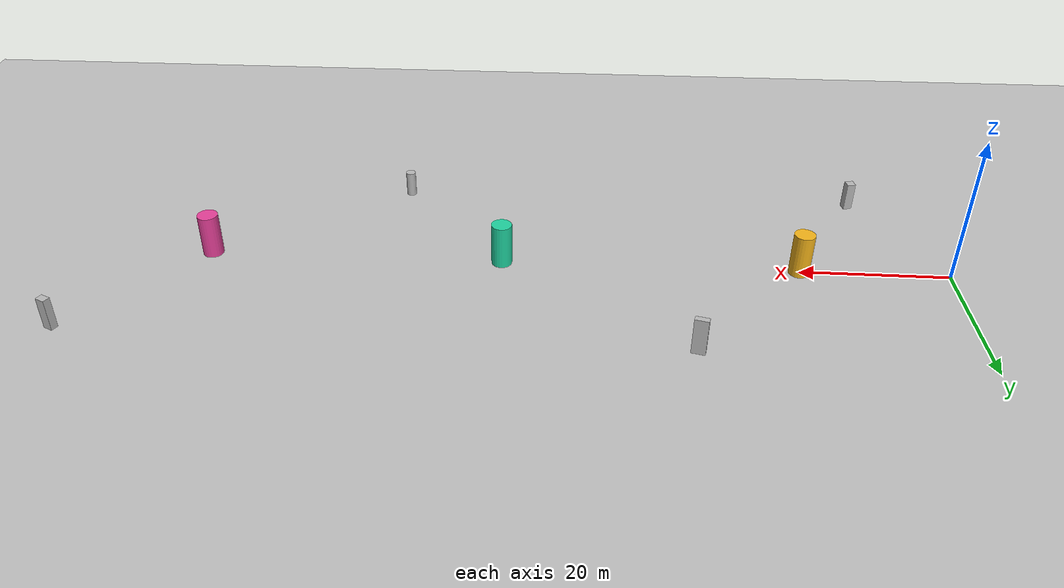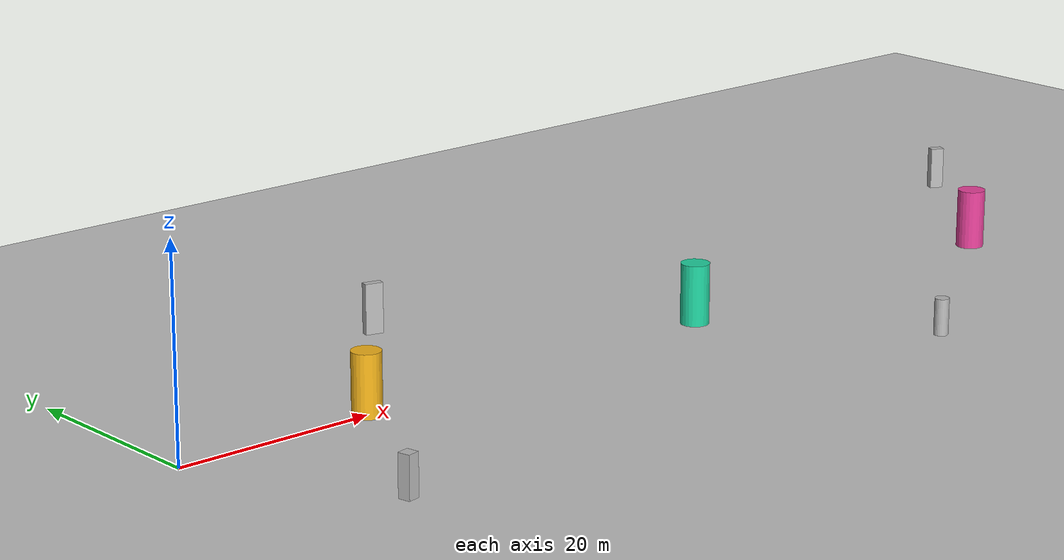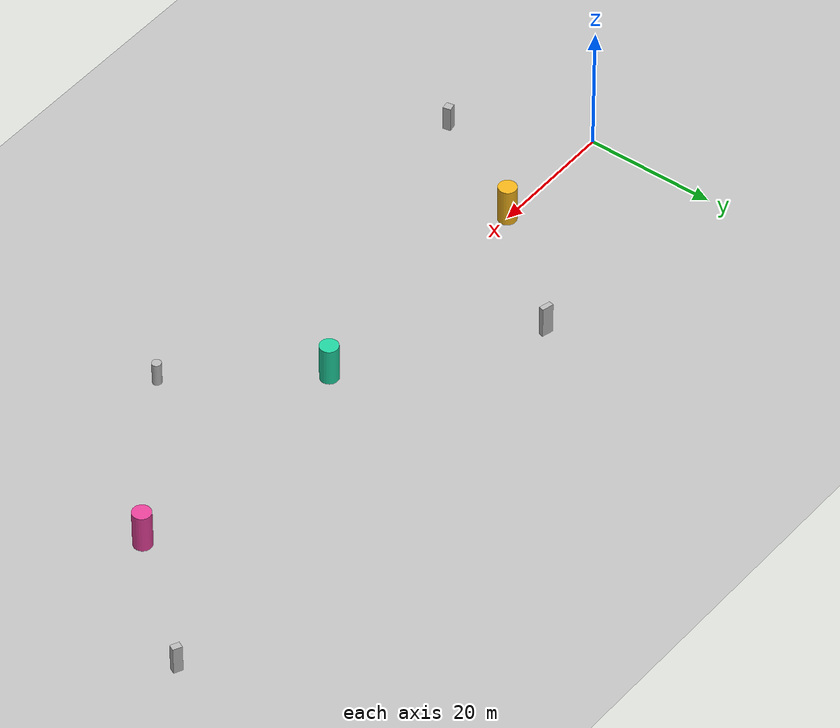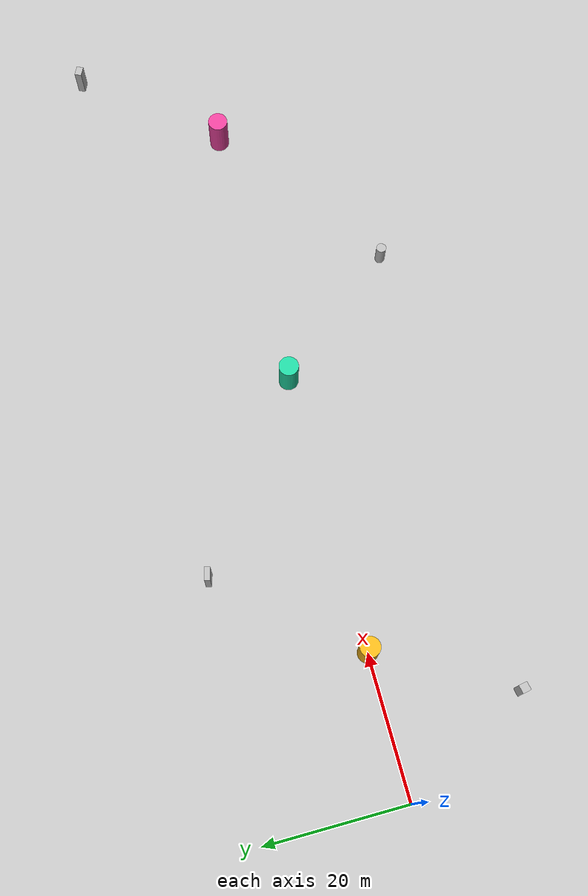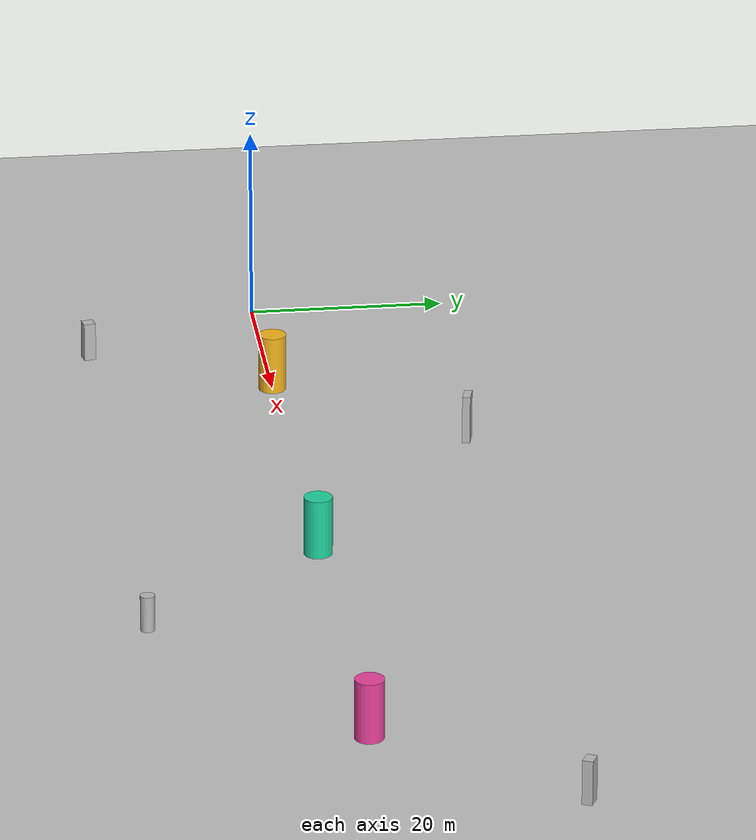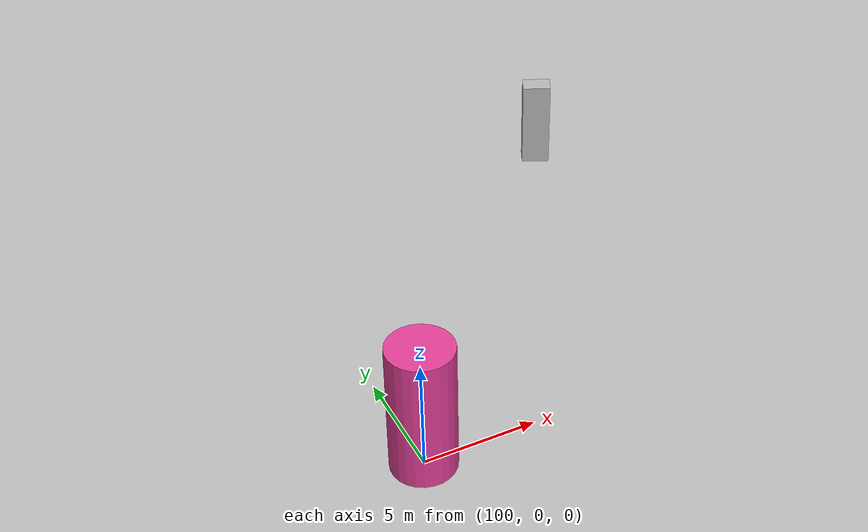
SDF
<sdf version="1.9">
 <world name="long_cross_obstacles">
  <physics type="ode">
   <max_step_size>0.004</max_step_size>
   <real_time_factor>0.8</real_time_factor>
   <real_time_update_rate>200</real_time_update_rate>
  </physics>
  <gravity>0 0 -9.8</gravity>
  <scene>
   <grid>true</grid>
   <ambient>0.4 0.4 0.4 1</ambient>
   <background>0.72 0.78 0.85 1</background>
   <shadows>true</shadows>
  </scene>
  <model name="ground_plane">
   <static>true</static>
   <link name="link">
    <collision name="collision">
     <geometry><plane><normal>0 0 1</normal><size>180 60</size></plane></geometry>
    </collision>
    <visual name="visual">
     <geometry><plane><normal>0 0 1</normal><size>180 60</size></plane></geometry>
     <material><ambient>0.75 0.75 0.75 1</ambient><diffuse>0.75 0.75 0.75 1</diffuse></material>
    </visual>
   </link>
  </model>
  <model name="cross_route_pillar_01">
   <static>true</static>
   <pose>20.0 0.0 3.0 0 0 0</pose>
   <link name="link">
    <collision name="collision">
     <geometry><cylinder><radius>1.40</radius><length>6.0</length></cylinder></geometry>
    </collision>
    <visual name="visual">
     <geometry><cylinder><radius>1.40</radius><length>6.0</length></cylinder></geometry>
     <material><ambient>0.85 0.55 0.08 1</ambient><diffuse>0.95 0.70 0.10 1</diffuse></material>
    </visual>
   </link>
  </model>
  <model name="cross_route_pillar_02">
   <static>true</static>
   <pose>60.0 0.0 3.0 0 0 0.14</pose>
   <link name="link">
    <collision name="collision">
     <geometry><cylinder><radius>1.40</radius><length>6.0</length></cylinder></geometry>
    </collision>
    <visual name="visual">
     <geometry><cylinder><radius>1.40</radius><length>6.0</length></cylinder></geometry>
     <material><ambient>0.10 0.65 0.50 1</ambient><diffuse>0.12 0.82 0.62 1</diffuse></material>
    </visual>
   </link>
  </model>
  <model name="cross_route_pillar_03">
   <static>true</static>
   <pose>100.0 0.0 3.0 0 0 -0.14</pose>
   <link name="link">
    <collision name="collision">
     <geometry><cylinder><radius>1.40</radius><length>6.0</length></cylinder></geometry>
    </collision>
    <visual name="visual">
     <geometry><cylinder><radius>1.40</radius><length>6.0</length></cylinder></geometry>
     <material><ambient>0.75 0.20 0.48 1</ambient><diffuse>0.90 0.25 0.60 1</diffuse></material>
    </visual>
   </link>
  </model>
  <model name="cross_edge_feature_01">
   <static>true</static>
   <pose>10.0 -18.0 2.0 0 0 0.2</pose>
   <link name="link">
    <collision name="collision"><geometry><box><size>1.2 1.2 4.0</size></box></geometry></collision>
    <visual name="visual"><geometry><box><size>1.2 1.2 4.0</size></box></geometry></visual>
   </link>
  </model>
  <model name="cross_edge_feature_02">
   <static>true</static>
   <pose>35.0 18.0 2.5 0 0 -0.25</pose>
   <link name="link">
    <collision name="collision"><geometry><box><size>1.8 0.8 5.0</size></box></geometry></collision>
    <visual name="visual"><geometry><box><size>1.8 0.8 5.0</size></box></geometry></visual>
   </link>
  </model>
  <model name="cross_edge_feature_03">
   <static>true</static>
   <pose>75.0 -18.0 1.8 0 0 0.35</pose>
   <link name="link">
    <collision name="collision">
     <geometry><cylinder><radius>0.7</radius><length>3.6</length></cylinder></geometry>
    </collision>
    <visual name="visual">
     <geometry><cylinder><radius>0.7</radius><length>3.6</length></cylinder></geometry>
    </visual>
   </link>
  </model>
  <model name="cross_edge_feature_04">
   <static>true</static>
   <pose>115.0 18.0 2.2 0 0 -0.45</pose>
   <link name="link">
    <collision name="collision"><geometry><box><size>1.4 1.0 4.4</size></box></geometry></collision>
    <visual name="visual"><geometry><box><size>1.4 1.0 4.4</size></box></geometry></visual>
   </link>
  </model>
  <light name="sunUTC" type="directional">
   <pose>0 0 500 0 0 0</pose>
   <intensity>1</intensity>
   <direction>0.001 0.625 -0.78</direction>
  </light>
  <spherical_coordinates>
   <surface_model>EARTH_WGS84</surface_model>
   <world_frame_orientation>ENU</world_frame_orientation>
   <latitude_deg>10.8231</latitude_deg>
   <longitude_deg>106.6297</longitude_deg>
   <elevation>10</elevation>
  </spherical_coordinates>
 </world>
</sdf>
